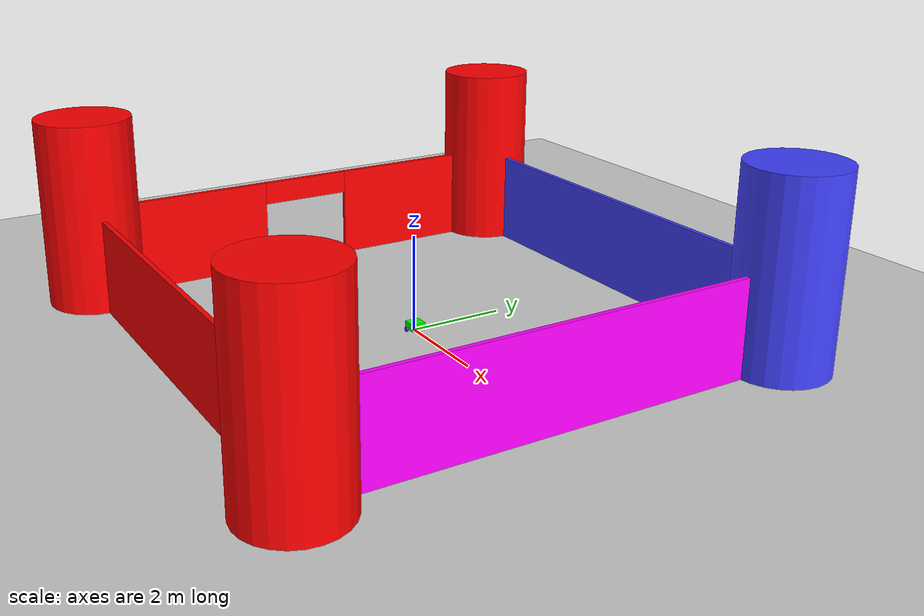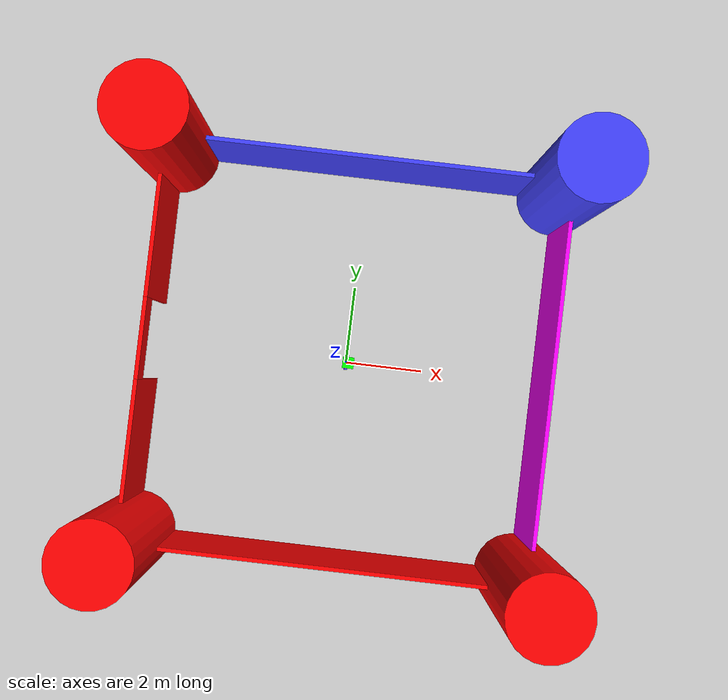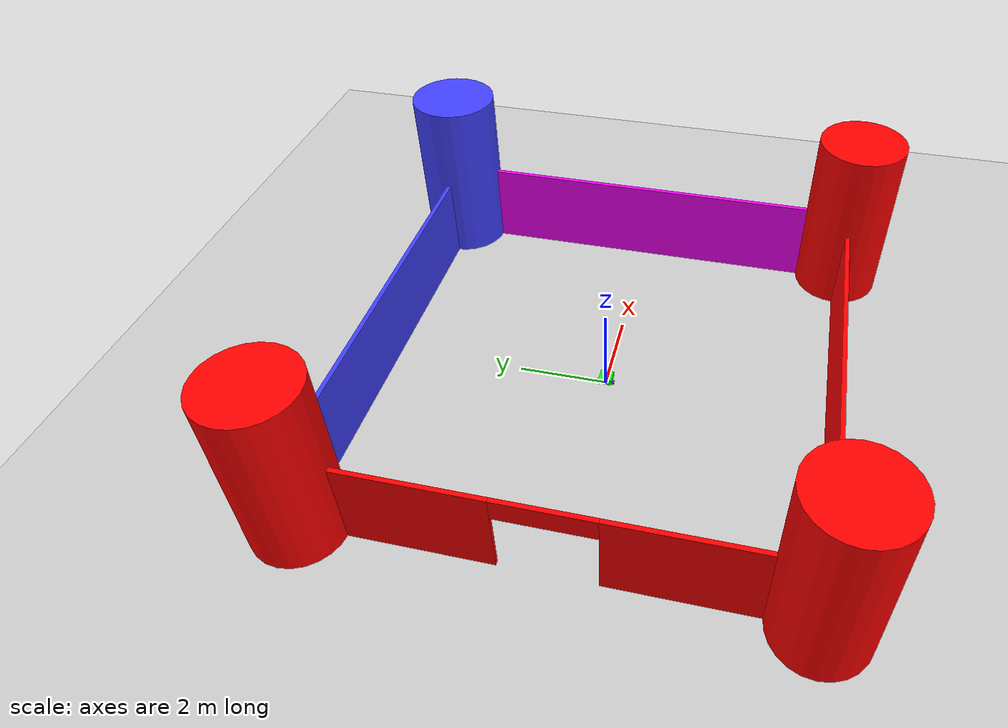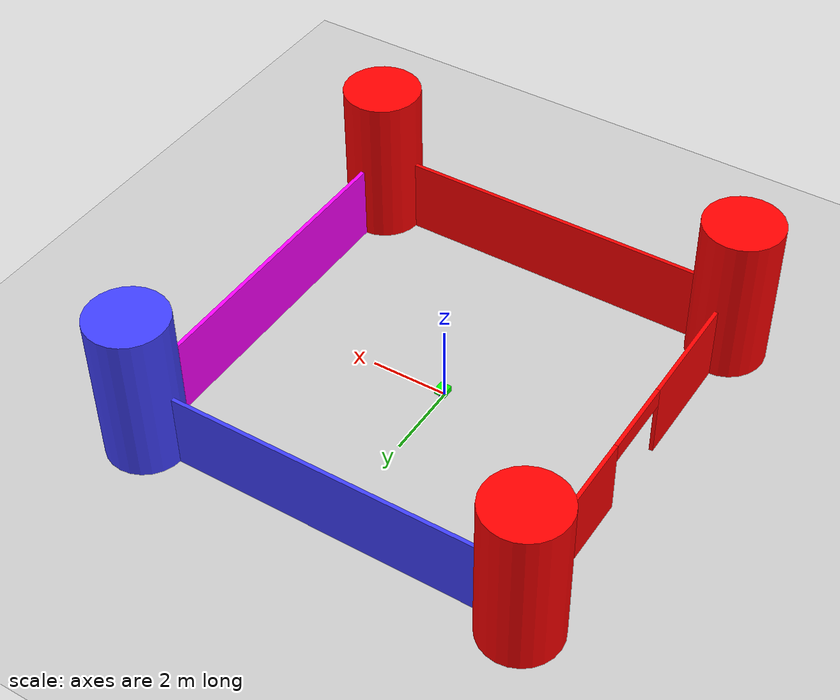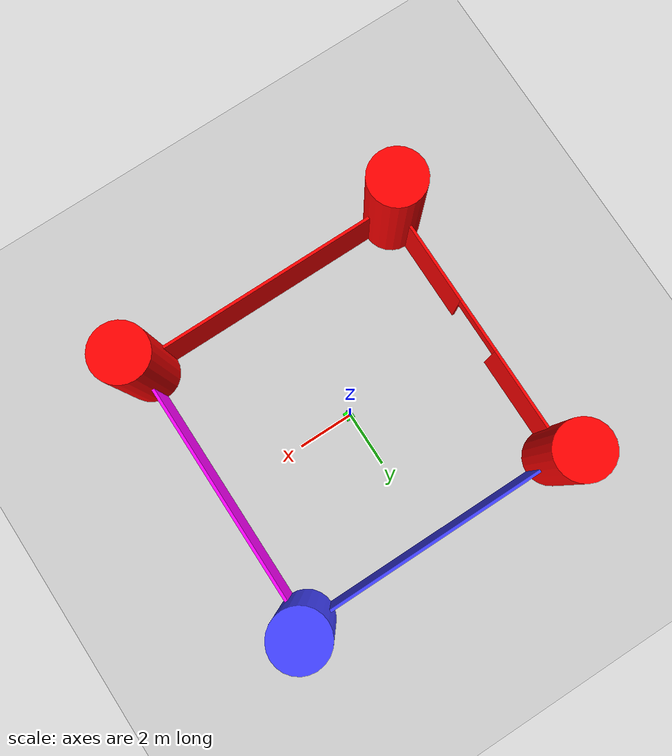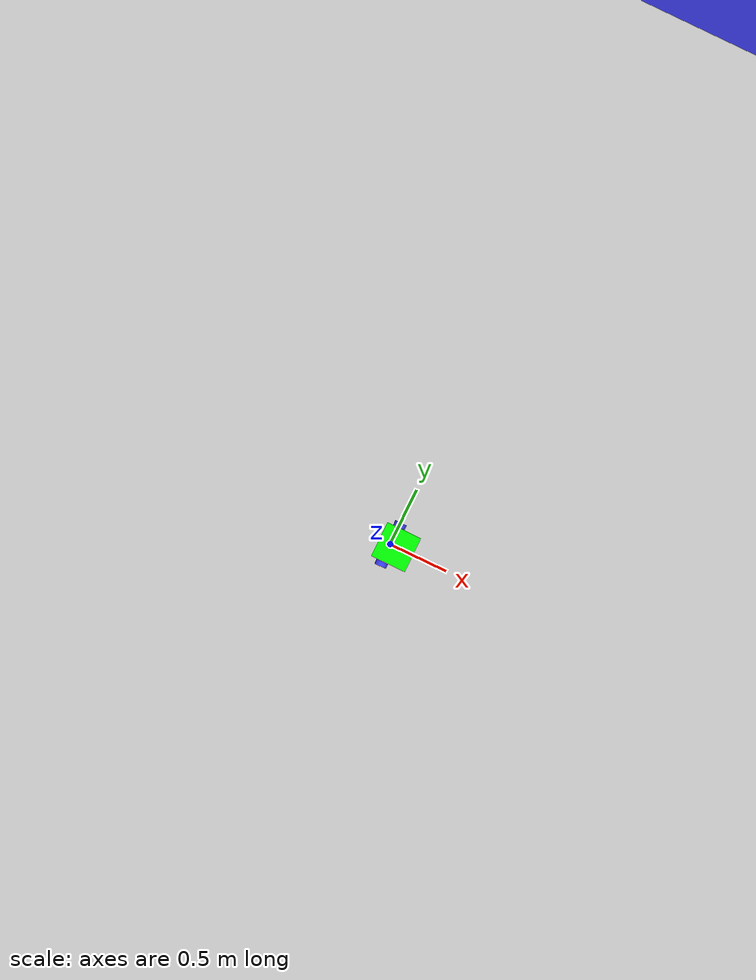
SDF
<?xml version="1.0" ?>
<sdf version="1.9">
    <world name="my_world">
        <include>
            <name>castle_link</name>
            <uri>file://src/exercise_3_4/description/castle.sdf</uri>
        </include>
        <include>
            <name>robot_link</name>
            <uri>file://src/exercise_3_4/description/robot.sdf</uri>
        </include>
        <physics name="1ms" type="ignored">
            <max_step_size>0.001</max_step_size>
            <real_time_factor>1.0</real_time_factor>
        </physics>
        <plugin
            filename="libignition-gazebo-physics-system.so"
            name="ignition::gazebo::systems::Physics">
        </plugin>
        <plugin
            filename="libignition-gazebo-user-commands-system.so"
            name="ignition::gazebo::systems::UserCommands">
        </plugin>
        <plugin
            filename="libignition-gazebo-scene-broadcaster-system.so"
            name="ignition::gazebo::systems::SceneBroadcaster">
        </plugin>

        <light type="directional" name="sun">
            <cast_shadows>true</cast_shadows>
            <pose>0 0 10 0 0 0</pose>
            <diffuse>0.8 0.8 0.8 1</diffuse>
            <specular>0.2 0.2 0.2 1</specular>
            <attenuation>
                <range>1000</range>
                <constant>0.9</constant>
                <linear>0.01</linear>
                <quadratic>0.001</quadratic>
            </attenuation>
            <direction>-0.5 0.1 -0.9</direction>
        </light>

        <model name="ground_plane">
            <static>true</static>
            <link name="link">
                <collision name="collision">
                <geometry>
                    <plane>
                    <normal>0 0 1</normal>
                    </plane>
                </geometry>
                </collision>
                <visual name="visual">
                <geometry>
                    <plane>
                    <normal>0 0 1</normal>
                    <size>100 100</size>
                    </plane>
                </geometry>
                <material>
                    <ambient>0.8 0.8 0.8 1</ambient>
                    <diffuse>0.8 0.8 0.8 1</diffuse>
                    <specular>0.8 0.8 0.8 1</specular>
                </material>
                </visual>
            </link>
            <!-- Moving Forward-->
            <plugin filename="libignition-gazebo-triggered-publisher-system.so"
            name="ignition::gazebo::systems::TriggeredPublisher">
                <input type="ignition.msgs.Int32" topic="/keyboard/keypress">
                    <match field="data">16777235</match>
                </input>
                <output type="ignition.msgs.Twist" topic="/cmd_vel">
                    linear: {x: 0.5}, angular: {z: 0.0}
                </output>
            </plugin>

            <!-- Stop-->
            <plugin filename="libignition-gazebo-triggered-publisher-system.so"
            name="ignition::gazebo::systems::TriggeredPublisher">
                <input type="ignition.msgs.Int32" topic="/keyboard/keypress">
                    <match field="data">16777216</match>
                </input>
                <output type="ignition.msgs.Twist" topic="/cmd_vel">
                    linear: {x: 0.0}, angular: {z: 0.0}
                </output>
            </plugin>

            <!-- Left -->
            <plugin filename="libignition-gazebo-triggered-publisher-system.so"
            name="ignition::gazebo::systems::TriggeredPublisher">
                <input type="ignition.msgs.Int32" topic="/keyboard/keypress">
                    <match field="data">16777234</match>
                </input>
                <output type="ignition.msgs.Twist" topic="/cmd_vel">
                    linear: {x: 0.0}, angular: {z: 0.5}
                </output>
            </plugin>

            <!-- Right -->
            <plugin filename="libignition-gazebo-triggered-publisher-system.so"
            name="ignition::gazebo::systems::TriggeredPublisher">
                <input type="ignition.msgs.Int32" topic="/keyboard/keypress">
                    <match field="data">16777236</match>
                </input>
                <output type="ignition.msgs.Twist" topic="/cmd_vel">
                    linear: {x: 0.0}, angular: {z: -0.5}
                </output>
            </plugin>

            <!-- back -->
            <plugin filename="libignition-gazebo-triggered-publisher-system.so"
            name="ignition::gazebo::systems::TriggeredPublisher">
                <input type="ignition.msgs.Int32" topic="/keyboard/keypress">
                    <match field="data">16777237</match>
                </input>
                <output type="ignition.msgs.Twist" topic="/cmd_vel">
                    linear: {x: -0.5}, angular: {z: 0.0}
                </output>
            </plugin>
        </model>
    </world>
</sdf>

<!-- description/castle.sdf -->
<sdf version='1.9'>
  <model name='robot'>
    <link name='base'>
      <inertial>
        <pose>-1 -1 2.35 0 0 0</pose>
        <mass>10</mass>
        <inertia>
          <ixx>719.35833333333323</ixx>
          <ixy>-72.000000000000043</ixy>
          <ixz>-16</ixz>
          <iyy>519.35833333333335</iyy>
          <iyz>-16</iyz>
          <izz>1218</izz>
        </inertia>
      </inertial>
      <collision name='base_fixed_joint_lump__NE_tower_link_collision'>
        <pose>5 5 2 0 0 0</pose>
        <geometry>
          <cylinder>
            <length>4</length>
            <radius>1</radius>
          </cylinder>
        </geometry>
      </collision>
      <collision name='base_fixed_joint_lump__NW_tower_link_collision_1'>
        <pose>-5 5 2 0 0 0</pose>
        <geometry>
          <cylinder>
            <length>4</length>
            <radius>1</radius>
          </cylinder>
        </geometry>
      </collision>
      <collision name='base_fixed_joint_lump__SE_tower_link_collision_2'>
        <pose>5 -5 2 0 0 0</pose>
        <geometry>
          <cylinder>
            <length>4</length>
            <radius>1</radius>
          </cylinder>
        </geometry>
      </collision>
      <collision name='base_fixed_joint_lump__SW_tower_link_collision_3'>
        <pose>-5 -5 2 0 0 0</pose>
        <geometry>
          <cylinder>
            <length>4</length>
            <radius>1</radius>
          </cylinder>
        </geometry>
      </collision>
      <collision name='base_fixed_joint_lump__door_link_collision_4'>
        <pose>-5 0 1.75 0 0 1.570796326794896</pose>
        <geometry>
          <box>
            <size>2 0.1 2</size>
          </box>
        </geometry>
      </collision>
      <collision name='base_fixed_joint_lump__east_wall_link_collision_5'>
        <pose>5 0 1 0 0 1.570796326794896</pose>
        <geometry>
          <box>
            <size>10 0.1 2</size>
          </box>
        </geometry>
      </collision>
      <collision name='base_fixed_joint_lump__north_wall_link_collision_6'>
        <pose>0 5 1 0 0 0</pose>
        <geometry>
          <box>
            <size>10 0.1 2</size>
          </box>
        </geometry>
      </collision>
      <collision name='base_fixed_joint_lump__south_wall_link_collision_7'>
        <pose>0 -5 1 0 0 0</pose>
        <geometry>
          <box>
            <size>10 0.1 2</size>
          </box>
        </geometry>
      </collision>
      <collision name='base_fixed_joint_lump__west_wall1_link_collision_8'>
        <pose>-5 3 1 0 0 1.570796326794896</pose>
        <geometry>
          <box>
            <size>4 0.1 2</size>
          </box>
        </geometry>
      </collision>
      <collision name='base_fixed_joint_lump__west_wall2_link_collision_9'>
        <pose>-5 -3 1 0 0 1.570796326794896</pose>
        <geometry>
          <box>
            <size>4 0.1 2</size>
          </box>
        </geometry>
      </collision>
      <visual name='base_fixed_joint_lump__NE_tower_link_visual'>
        <pose>5 5 2 0 0 0</pose>
        <geometry>
          <cylinder>
            <length>4</length>
            <radius>1</radius>
          </cylinder>
        </geometry>
        <material>
          <diffuse>0.25 0.25 1 1</diffuse>
          <ambient>0.25 0.25 1 1</ambient>
        </material>
      </visual>
      <visual name='base_fixed_joint_lump__NW_tower_link_visual_1'>
        <pose>-5 5 2 0 0 0</pose>
        <geometry>
          <cylinder>
            <length>4</length>
            <radius>1</radius>
          </cylinder>
        </geometry>
        <material>
          <diffuse>1 0 0 1</diffuse>
          <ambient>1 0 0 1</ambient>
        </material>
      </visual>
      <visual name='base_fixed_joint_lump__SE_tower_link_visual_2'>
        <pose>5 -5 2 0 0 0</pose>
        <geometry>
          <cylinder>
            <length>4</length>
            <radius>1</radius>
          </cylinder>
        </geometry>
        <material>
          <diffuse>1 0 0 1</diffuse>
          <ambient>1 0 0 1</ambient>
        </material>
      </visual>
      <visual name='base_fixed_joint_lump__SW_tower_link_visual_3'>
        <pose>-5 -5 2 0 0 0</pose>
        <geometry>
          <cylinder>
            <length>4</length>
            <radius>1</radius>
          </cylinder>
        </geometry>
        <material>
          <diffuse>1 0 0 1</diffuse>
          <ambient>1 0 0 1</ambient>
        </material>
      </visual>
      <visual name='base_fixed_joint_lump__door_link_visual_4'>
        <pose>-5 0 1.75 0 0 1.570796326794896</pose>
        <geometry>
          <box>
            <size>2 0.1 0.5</size>
          </box>
        </geometry>
        <material>
          <diffuse>1 0 0 1</diffuse>
          <ambient>1 0 0 1</ambient>
        </material>
      </visual>
      <visual name='base_fixed_joint_lump__east_wall_link_visual_5'>
        <pose>5 0 1 0 0 1.570796326794896</pose>
        <geometry>
          <box>
            <size>10 0.1 2</size>
          </box>
        </geometry>
        <material>
          <diffuse>1 0 1 1</diffuse>
          <ambient>1 0 1 1</ambient>
        </material>
      </visual>
      <visual name='base_fixed_joint_lump__north_wall_link_visual_6'>
        <pose>0 5 1 0 0 0</pose>
        <geometry>
          <box>
            <size>10 0.1 2</size>
          </box>
        </geometry>
        <material>
          <diffuse>0.25 0.25 1 1</diffuse>
          <ambient>0.25 0.25 1 1</ambient>
        </material>
      </visual>
      <visual name='base_fixed_joint_lump__south_wall_link_visual_7'>
        <pose>0 -5 1 0 0 0</pose>
        <geometry>
          <box>
            <size>10 0.1 2</size>
          </box>
        </geometry>
        <material>
          <diffuse>1 0 0 1</diffuse>
          <ambient>1 0 0 1</ambient>
        </material>
      </visual>
      <visual name='base_fixed_joint_lump__west_wall1_link_visual_8'>
        <pose>-5 3 1 0 0 1.570796326794896</pose>
        <geometry>
          <box>
            <size>4 0.1 2</size>
          </box>
        </geometry>
        <material>
          <diffuse>1 0 0 1</diffuse>
          <ambient>1 0 0 1</ambient>
        </material>
      </visual>
      <visual name='base_fixed_joint_lump__west_wall2_link_visual_9'>
        <pose>-5 -3 1 0 0 1.570796326794896</pose>
        <geometry>
          <box>
            <size>4 0.1 2</size>
          </box>
        </geometry>
        <material>
          <diffuse>1 0 0 1</diffuse>
          <ambient>1 0 0 1</ambient>
        </material>
      </visual>
    </link>
    <frame name='NE_tower' attached_to='base'>
      <pose>5 5 2 0 -0 0</pose>
    </frame>
    <frame name='NE_tower_link' attached_to='NE_tower'/>
    <frame name='NW_tower' attached_to='base'>
      <pose>-5 5 2 0 -0 0</pose>
    </frame>
    <frame name='NW_tower_link' attached_to='NW_tower'/>
    <frame name='SE_tower' attached_to='base'>
      <pose>5 -5 2 0 -0 0</pose>
    </frame>
    <frame name='SE_tower_link' attached_to='SE_tower'/>
    <frame name='SW_tower' attached_to='base'>
      <pose>-5 -5 2 0 -0 0</pose>
    </frame>
    <frame name='SW_tower_link' attached_to='SW_tower'/>
    <frame name='door' attached_to='base'>
      <pose>-5 0 1.75 0 -0 1.5708</pose>
    </frame>
    <frame name='door_link' attached_to='door'/>
    <frame name='east_wall' attached_to='base'>
      <pose>5 0 1 0 -0 1.5708</pose>
    </frame>
    <frame name='east_wall_link' attached_to='east_wall'/>
    <frame name='north_wall' attached_to='base'>
      <pose>0 5 1 0 -0 0</pose>
    </frame>
    <frame name='north_wall_link' attached_to='north_wall'/>
    <frame name='south_wall' attached_to='base'>
      <pose>0 -5 1 0 -0 0</pose>
    </frame>
    <frame name='south_wall_link' attached_to='south_wall'/>
    <frame name='west_wall1' attached_to='base'>
      <pose>-5 3 1 0 -0 1.5708</pose>
    </frame>
    <frame name='west_wall1_link' attached_to='west_wall1'/>
    <frame name='west_wall2' attached_to='base'>
      <pose>-5 -3 1 0 -0 1.5708</pose>
    </frame>
    <frame name='west_wall2_link' attached_to='west_wall2'/>
  </model>
</sdf>

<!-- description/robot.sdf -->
<sdf version='1.9'>
  <model name='robot'>
    <link name='base_link'>
      <inertial>
        <pose>0.065 0 0.0625 0 0 0</pose>
        <mass>0.59999999999999998</mass>
        <inertia>
          <ixx>0.0052562499999999988</ixx>
          <ixy>0</ixy>
          <ixz>0.00056250000000000007</ixz>
          <iyy>0.0059312499999999964</iyy>
          <iyz>0</iyz>
          <izz>0.0082749999999999976</izz>
        </inertia>
      </inertial>
      <collision name='base_link_fixed_joint_lump__chassis_collision'>
        <pose>0.04999999999999999 0 0.075 0 0 0</pose>
        <geometry>
          <box>
            <size>0.3 0.3 0.15</size>
          </box>
        </geometry>
      </collision>
      <collision name='base_link_fixed_joint_lump__caster_wheel_collision_1'>
        <pose>0.14 0 0 0 0 0</pose>
        <geometry>
          <sphere>
            <radius>0.050000000000000003</radius>
          </sphere>
        </geometry>
        <surface>
          <contact>
            <ode/>
          </contact>
          <friction>
            <ode>
              <mu>0</mu>
              <mu2>0</mu2>
            </ode>
          </friction>
        </surface>
      </collision>
      <visual name='base_link_fixed_joint_lump__chassis_visual'>
        <pose>0.04999999999999999 0 0.075 0 0 0</pose>
        <geometry>
          <box>
            <size>0.3 0.3 0.15</size>
          </box>
        </geometry>
        <material>
          <diffuse>0 1 0 1</diffuse>
          <ambient>0 1 0 1</ambient>
        </material>
      </visual>
      <visual name='base_link_fixed_joint_lump__caster_wheel_visual_1'>
        <pose>0.14 0 0 0 0 0</pose>
        <geometry>
          <sphere>
            <radius>0.050000000000000003</radius>
          </sphere>
        </geometry>
        <material>
          <diffuse>0 0 0 1</diffuse>
          <ambient>0 0 0 1</ambient>
        </material>
      </visual>
    </link>
    <joint name='left_wheel_joint' type='revolute'>
      <pose relative_to='base_link'>0 0.175 0 -1.570796326794896 0 0</pose>
      <parent>base_link</parent>
      <child>left_wheel</child>
      <axis>
        <xyz>0 0 1</xyz>
        <limit>
          <lower>-10000000000000000</lower>
          <upper>10000000000000000</upper>
        </limit>
        <dynamics>
          <spring_reference>0</spring_reference>
          <spring_stiffness>0</spring_stiffness>
        </dynamics>
      </axis>
    </joint>
    <link name='left_wheel'>
      <pose relative_to='left_wheel_joint'>0 0 0 0 0 0</pose>
      <inertial>
        <pose>0 0 0 0 0 0</pose>
        <mass>0.10000000000000001</mass>
        <inertia>
          <ixx>7.5833333333333352e-05</ixx>
          <ixy>0</ixy>
          <ixz>0</ixz>
          <iyy>7.5833333333333352e-05</iyy>
          <iyz>0</iyz>
          <izz>0.000125</izz>
        </inertia>
      </inertial>
      <collision name='left_wheel_collision'>
        <pose>0 0 0 0 0 0</pose>
        <geometry>
          <cylinder>
            <length>0.040000000000000001</length>
            <radius>0.050000000000000003</radius>
          </cylinder>
        </geometry>
      </collision>
      <visual name='left_wheel_visual'>
        <pose>0 0 0 0 0 0</pose>
        <geometry>
          <cylinder>
            <length>0.040000000000000001</length>
            <radius>0.050000000000000003</radius>
          </cylinder>
        </geometry>
        <material>
          <diffuse>0.25 0.25 1 1</diffuse>
          <ambient>0.25 0.25 1 1</ambient>
        </material>
      </visual>
    </link>
    <joint name='right_wheel_joint' type='revolute'>
      <pose relative_to='base_link'>0 -0.175 0 1.570796326794896 0 0</pose>
      <parent>base_link</parent>
      <child>right_wheel</child>
      <axis>
        <xyz>0 0 -1</xyz>
        <limit>
          <lower>-10000000000000000</lower>
          <upper>10000000000000000</upper>
        </limit>
        <dynamics>
          <spring_reference>0</spring_reference>
          <spring_stiffness>0</spring_stiffness>
        </dynamics>
      </axis>
    </joint>
    <link name='right_wheel'>
      <pose relative_to='right_wheel_joint'>0 0 0 0 0 0</pose>
      <inertial>
        <pose>0 0 0 0 0 0</pose>
        <mass>0.10000000000000001</mass>
        <inertia>
          <ixx>7.5833333333333352e-05</ixx>
          <ixy>0</ixy>
          <ixz>0</ixz>
          <iyy>7.5833333333333352e-05</iyy>
          <iyz>0</iyz>
          <izz>0.000125</izz>
        </inertia>
      </inertial>
      <collision name='right_wheel_collision'>
        <pose>0 0 0 0 0 0</pose>
        <geometry>
          <cylinder>
            <length>0.040000000000000001</length>
            <radius>0.050000000000000003</radius>
          </cylinder>
        </geometry>
      </collision>
      <visual name='right_wheel_visual'>
        <pose>0 0 0 0 0 0</pose>
        <geometry>
          <cylinder>
            <length>0.040000000000000001</length>
            <radius>0.050000000000000003</radius>
          </cylinder>
        </geometry>
        <material>
          <diffuse>0.25 0.25 1 1</diffuse>
          <ambient>0.25 0.25 1 1</ambient>
        </material>
      </visual>
    </link>
    <pose>0 0 0.05 0 0 0</pose>
    <plugin name='ignition::gazebo::systems::DiffDrive' filename='libignition-gazebo-diff-drive-system.so'>
      <left_joint>left_wheel_joint</left_joint>
      <right_joint>right_wheel_joint</right_joint>
      <wheel_separation>0.3</wheel_separation>
      <wheel_radius>0.05</wheel_radius>
      <odom_publish_frequency>1</odom_publish_frequency>
      <topic>cmd_vel</topic>
    </plugin>
    <plugin name='ignition::gazebo::systems::JointStatePublisher' filename='libignition-gazebo-joint-state-publisher-system'/>
    <plugin name='ignition::gazebo::systems::OdometryPublisher' filename='libignition-gazebo-odometry-publisher-system'>
      <odom_frame>world</odom_frame>
      <robot_base_frame>base_link</robot_base_frame>
    </plugin>
    <frame name='caster_wheel_joint' attached_to='chassis'>
      <pose>0.24 0 0 0 -0 0</pose>
    </frame>
    <frame name='caster_wheel' attached_to='caster_wheel_joint'/>
    <frame name='chassis_joint' attached_to='base_link'>
      <pose>-0.1 0 0 0 -0 0</pose>
    </frame>
    <frame name='chassis' attached_to='chassis_joint'/>
  </model>
</sdf>
